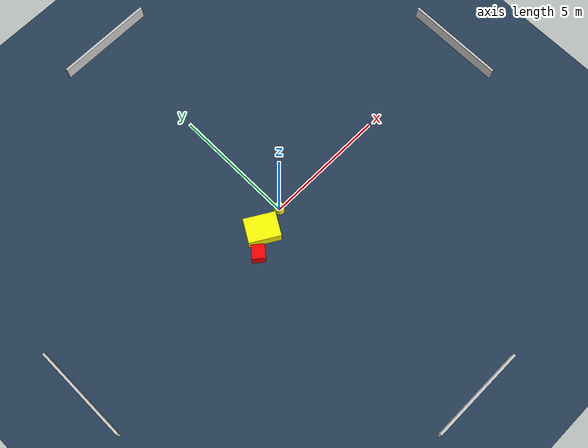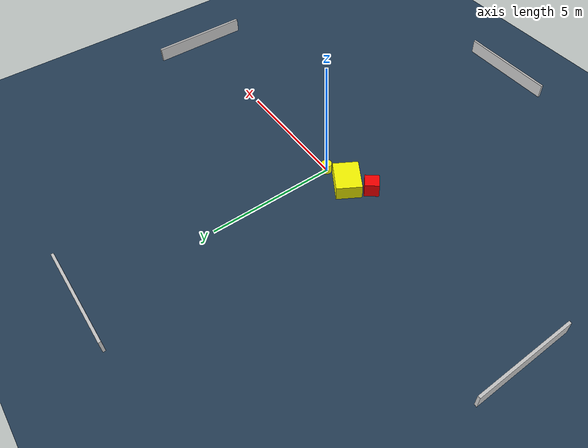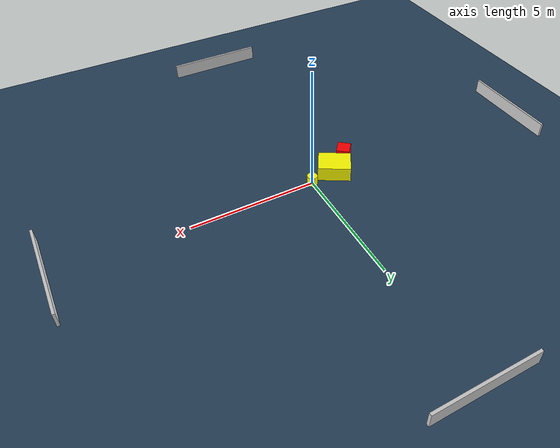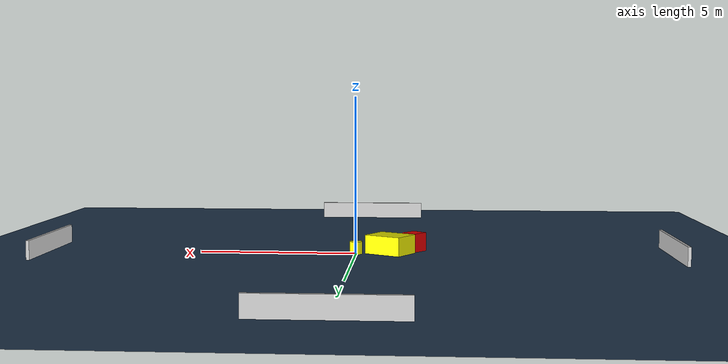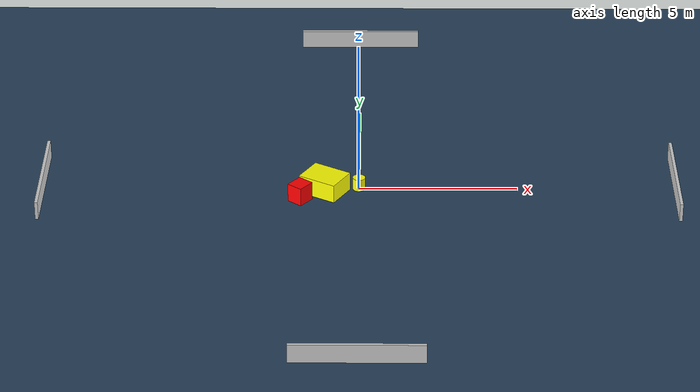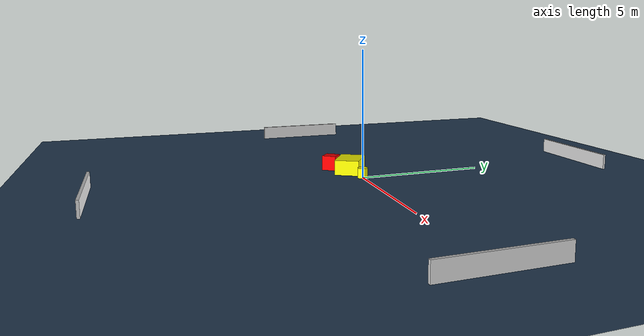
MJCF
<?xml version="1.0" ?>
<mujoco model="generated_environment">
  <option timestep="0.01" integrator="RK4" cone="elliptic"/>
  <default>
    <geom density="1"/>
  </default>
  <asset>
    <texture builtin="gradient" height="3072" name="skybox" rgb1="0.3 0.5 0.7" rgb2="0 0 0" type="skybox" width="512"/>
    <texture builtin="checker" height="300" name="groundplane" rgb1="0.2 0.3 0.4" rgb2="0.1 0.2 0.3" type="2d" width="300"/>
    <material name="groundplane" reflectance="0.2" texrepeat="5 5" texture="groundplane"/>
  </asset>
  <worldbody>
    <light dir="0 0 -1" directional="true" pos="0 0 1.5"/>
    <geom condim="3" friction="0.5 0.005 0.001" material="groundplane" name="floor" pos="0 0 0" size="0 0 0.05" type="plane"/>
    <body name="walls">
      <geom name="wall_1" condim="4" pos="-10.0 0.0 0.3" rgba="0.800000011920929 0.800000011920929 0.800000011920929 1.0" size="0.05 2.0 0.3" type="box"/>
      <geom name="wall_2" condim="4" pos="10.0 0.0 0.3" rgba="0.800000011920929 0.800000011920929 0.800000011920929 1.0" size="0.05 2.0 0.3" type="box"/>
      <geom name="wall_3" condim="4" pos="0.0 -10.0 0.3" rgba="0.800000011920929 0.800000011920929 0.800000011920929 1.0" size="2.0 0.05 0.3" type="box"/>
      <geom name="wall_4" condim="4" pos="0.0 10.0 0.3" rgba="0.800000011920929 0.800000011920929 0.800000011920929 1.0" size="2.0 0.05 0.3" type="box"/>
    </body>
    <body name="robot">
      <joint name="joint_x" type="slide" pos="0 0 0" axis="1 0 0"/>
      <joint name="joint_y" type="slide" pos="0 0 0" axis="0 1 0"/>
      <geom name="robot" type="cylinder" pos="0.0 0.0 0.2" size="0.2 0.2 0.0" mass="5.0" friction="1.0 0.005 0.0001" condim="4" rgba="1.0 1.0 0.0 1.0"/>
    </body>
    <body name="obstacle_1_movable">
      <geom name="obstacle_1_movable" condim="4" pos="-1.0831661002718909 -0.16343596264064172 0.3" euler="0 0 329.2734943859675" friction="0.0 0.005 0.001" rgba="1.0 1.0 0.0 1.0" size="0.6405756107498203 0.49525068682661183 0.3" type="box" mass="0.1"/>
      <joint type="free"/>
    </body>
    <body name="obstacle_2_static">
      <geom name="obstacle_2_static" condim="4" pos="-1.8459332677572353 -0.7368933771944062 0.3" euler="0 0 230.7645837567135" friction="0.0 0.005 0.001" rgba="1.0 0.0 0.0 1.0" size="0.2828600823064638 0.26335237144873425 0.3" type="box"/>
    </body>
  </worldbody>
  <actuator>
    <motor name="actuator_x" joint="joint_x" gear="1" ctrlrange="-1 1"/>
    <motor name="actuator_y" joint="joint_y" gear="1" ctrlrange="-1 1"/>
  </actuator>
</mujoco>
